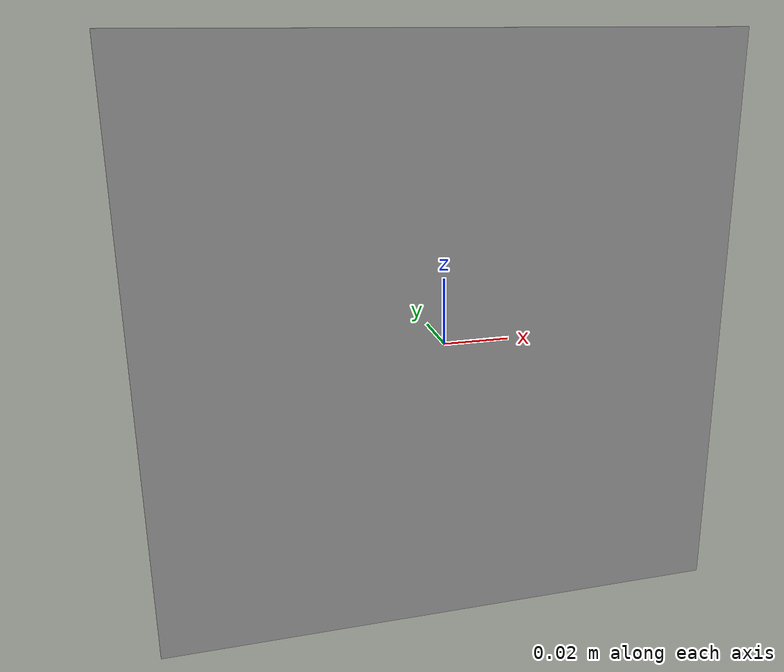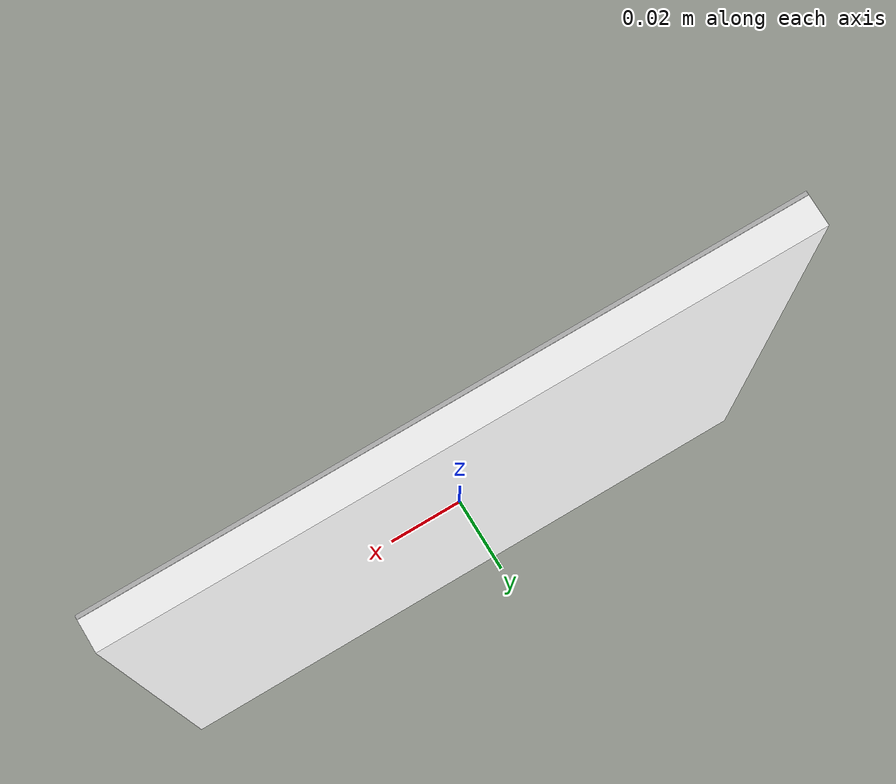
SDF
<?xml version="1.0" ?>
<sdf version="1.6">
  <model name="aruco_stop_sign">
    <static>true</static>
    <link name="board_link">
      <visual name="white_backing">
        <geometry>
          <box>
            <size>0.18 0.008 0.18</size>
          </box>
        </geometry>
        <material>
          <ambient>1 1 1 1</ambient>
          <diffuse>1 1 1 1</diffuse>
        </material>
      </visual>
      <visual name="sign_face">
        <pose>0 -0.0046 0 0 0 0</pose>
        <geometry>
          <box>
            <size>0.18 0.001 0.18</size>
          </box>
        </geometry>
        <material>
          <script>
            <uri>model://aruco_stop_sign/materials/scripts</uri>
            <uri>model://aruco_stop_sign/materials/textures</uri>
            <name>ArucoStopSignMaterial</name>
          </script>
        </material>
      </visual>
      <collision name="collision">
        <geometry>
          <box>
            <size>0.18 0.008 0.18</size>
          </box>
        </geometry>
      </collision>
    </link>
  </model>
</sdf>
